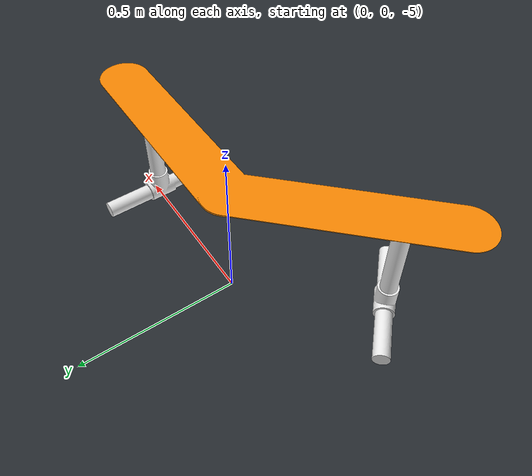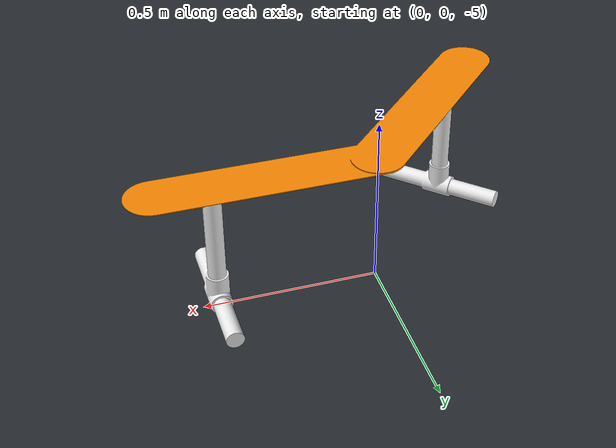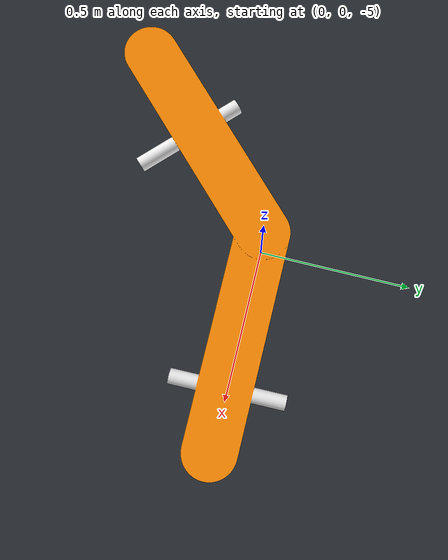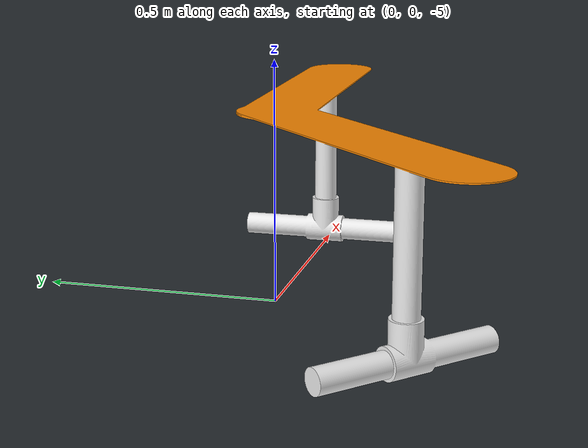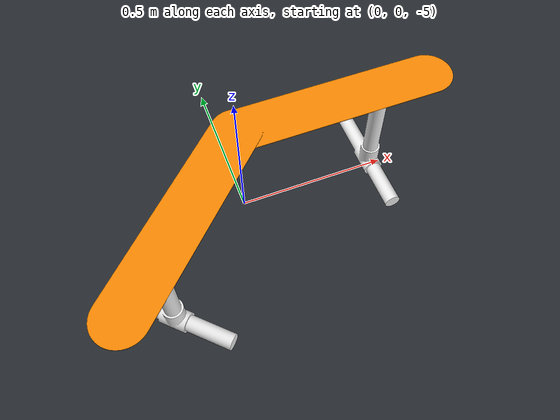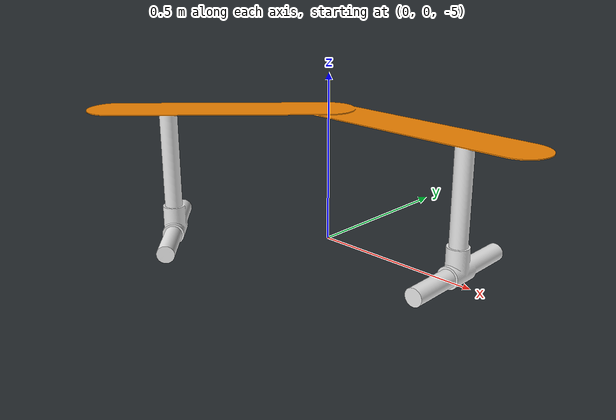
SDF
<?xml version="1.0" ?>
<sdf version="1.9">
    <world name="task_gate">
        <light type="directional" name="sun">
            <cast_shadows>true</cast_shadows>
            <pose>0 0 10 0 0 0</pose>
            <diffuse>0.8 0.8 0.8 1</diffuse>
            <specular>0.2 0.2 0.2 1</specular>
            <attenuation>
                <range>1000</range>
                <constant>0.9</constant>
                <linear>0.01</linear>
                <quadratic>0.001</quadratic>
            </attenuation>
            <direction>-0.5 0.1 -0.9</direction>
        </light>

        <model name="simple_pool">
            <static>true</static>
            <link name="link">
                <visual name="pool_visual">
                    <geometry>
                        <mesh>
                            <uri>../../../assets/common/simple_pool/simple_pool.dae</uri>
                        </mesh>
                    </geometry>
                </visual>
                <collision name="pool_collision">
                    <geometry>
                        <mesh>
                            <uri>../../../assets/common/simple_pool/simple_pool.dae</uri>
                        </mesh>
                    </geometry>
                </collision>
            </link>
        </model>

        <model name="path_marker">
            <static>true</static>
            <link name="path_marker">
                <pose>0 0 -5 0 0 0</pose>
                <visual name="path_marker_visual">
                    <geometry>
                        <mesh>
                            <uri>../../../assets/common/path_marker/path_marker_45cw.dae</uri>
                        </mesh>
                    </geometry>
                </visual>
                <collision name="path_marker_collision">
                    <geometry>
                        <mesh>
                            <uri>../../../assets/common/path_marker/path_marker_45cw.dae</uri>
                        </mesh>
                    </geometry>
                </collision>
            </link>
        </model>

    </world>
</sdf>
